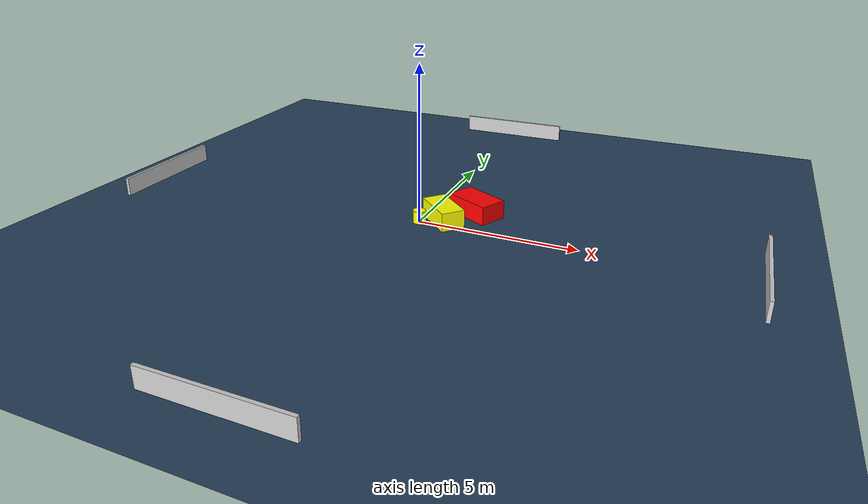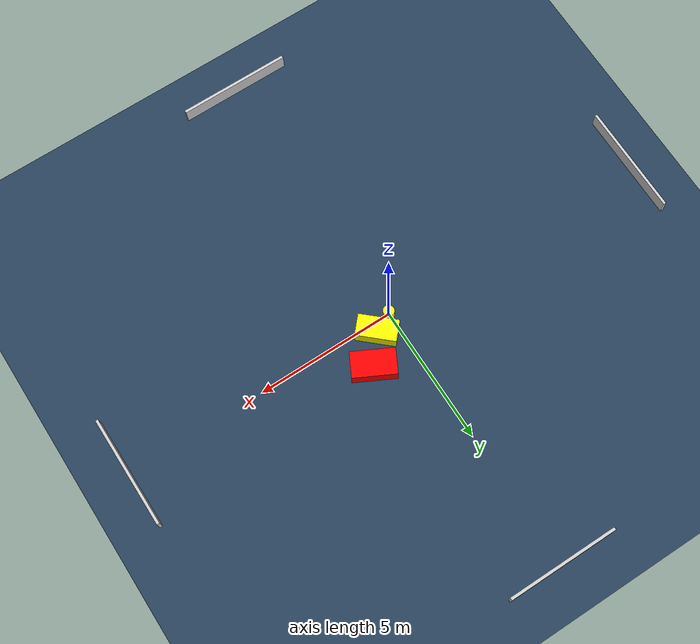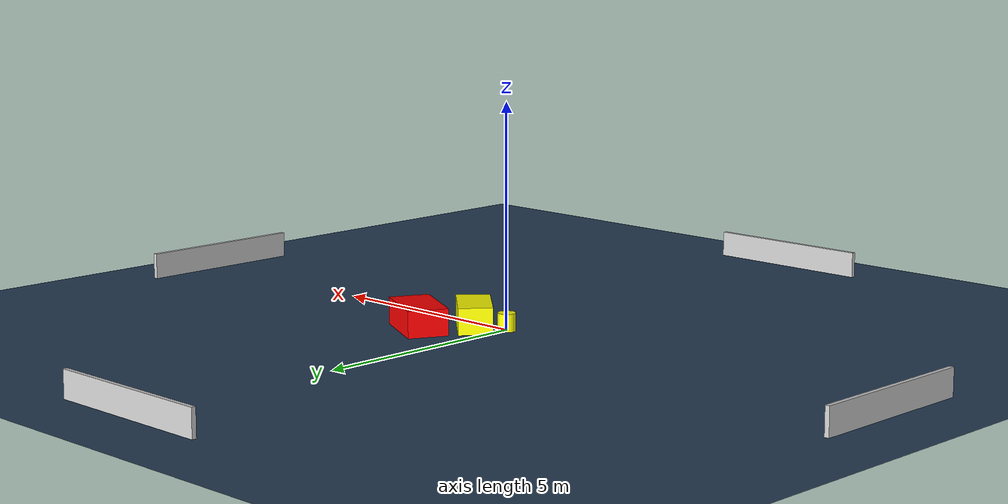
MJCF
<?xml version="1.0" ?>
<mujoco model="generated_environment">
  <option timestep="0.01" integrator="RK4" cone="elliptic"/>
  <default>
    <geom density="1"/>
  </default>
  <asset>
    <texture builtin="gradient" height="3072" name="skybox" rgb1="0.3 0.5 0.7" rgb2="0 0 0" type="skybox" width="512"/>
    <texture builtin="checker" height="300" name="groundplane" rgb1="0.2 0.3 0.4" rgb2="0.1 0.2 0.3" type="2d" width="300"/>
    <material name="groundplane" reflectance="0.2" texrepeat="5 5" texture="groundplane"/>
  </asset>
  <worldbody>
    <light dir="0 0 -1" directional="true" pos="0 0 1.5"/>
    <geom condim="3" friction="0.5 0.005 0.001" material="groundplane" name="floor" pos="0 0 0" size="0 0 0.05" type="plane"/>
    <body name="walls">
      <geom name="wall_1" condim="4" pos="-10.0 0.0 0.3" rgba="0.800000011920929 0.800000011920929 0.800000011920929 1.0" size="0.05 2.0 0.3" type="box"/>
      <geom name="wall_2" condim="4" pos="10.0 0.0 0.3" rgba="0.800000011920929 0.800000011920929 0.800000011920929 1.0" size="0.05 2.0 0.3" type="box"/>
      <geom name="wall_3" condim="4" pos="0.0 -10.0 0.3" rgba="0.800000011920929 0.800000011920929 0.800000011920929 1.0" size="2.0 0.05 0.3" type="box"/>
      <geom name="wall_4" condim="4" pos="0.0 10.0 0.3" rgba="0.800000011920929 0.800000011920929 0.800000011920929 1.0" size="2.0 0.05 0.3" type="box"/>
    </body>
    <body name="robot">
      <joint name="joint_x" type="slide" pos="0 0 0" axis="1 0 0"/>
      <joint name="joint_y" type="slide" pos="0 0 0" axis="0 1 0"/>
      <geom name="robot" type="cylinder" pos="0.0 0.0 0.2" size="0.2 0.2 0.0" mass="5.0" friction="1.0 0.005 0.0001" condim="4" rgba="1.0 1.0 0.0 1.0"/>
    </body>
    <body name="obstacle_1_movable">
      <geom name="obstacle_1_movable" condim="4" pos="0.6735951677297642 0.3297857558845592 0.3" euler="0 0 227.7706733226035" friction="0.0 0.005 0.001" rgba="1.0 1.0 0.0 1.0" size="0.38057926066421 0.7054929181731426 0.3" type="box" mass="0.1"/>
      <joint type="free"/>
    </body>
    <body name="obstacle_2_static">
      <geom name="obstacle_2_static" condim="4" pos="1.4323269390239737 1.283194106866416 0.3" euler="0 0 152.61836078505294" friction="0.0 0.005 0.001" rgba="1.0 0.0 0.0 1.0" size="0.7753446528656516 0.4567941147915487 0.3" type="box"/>
    </body>
  </worldbody>
  <actuator>
    <motor name="actuator_x" joint="joint_x" gear="1" ctrlrange="-1 1"/>
    <motor name="actuator_y" joint="joint_y" gear="1" ctrlrange="-1 1"/>
  </actuator>
</mujoco>
